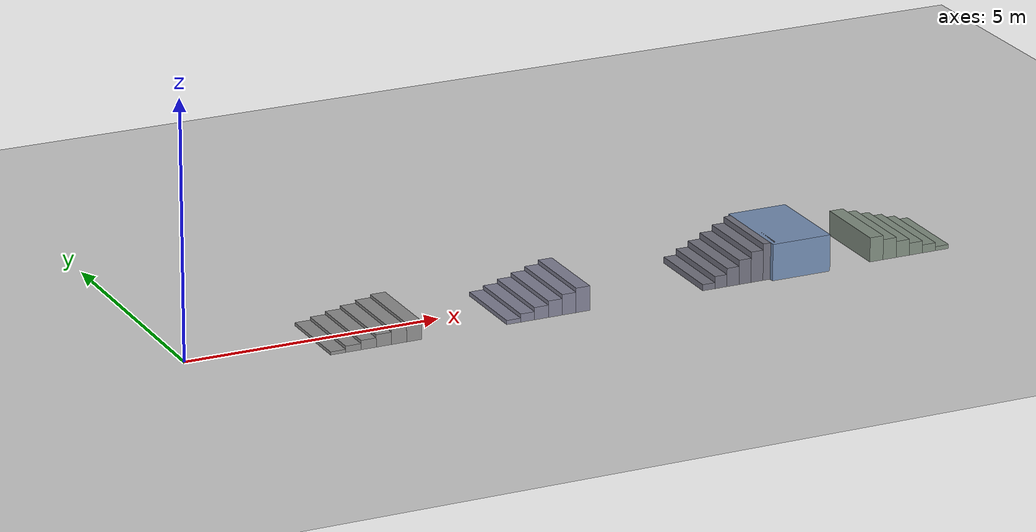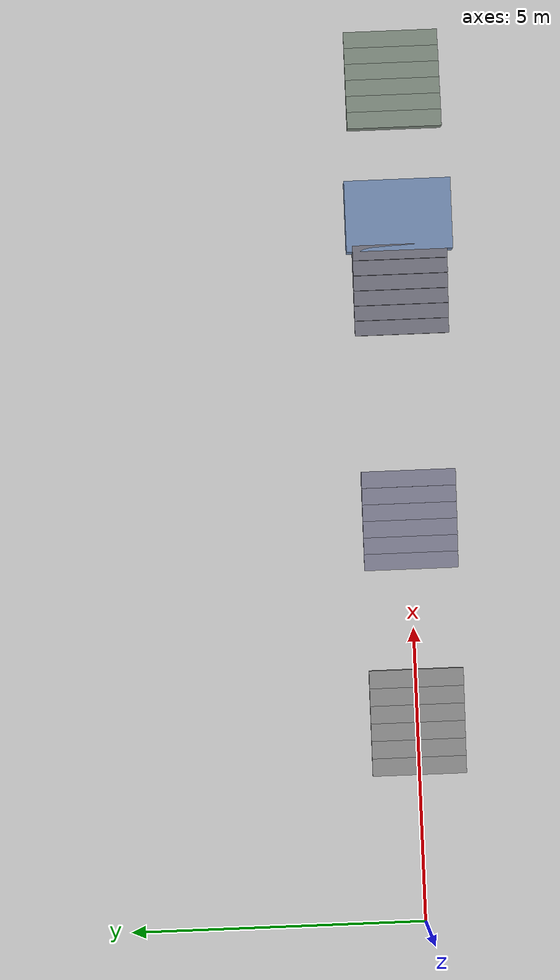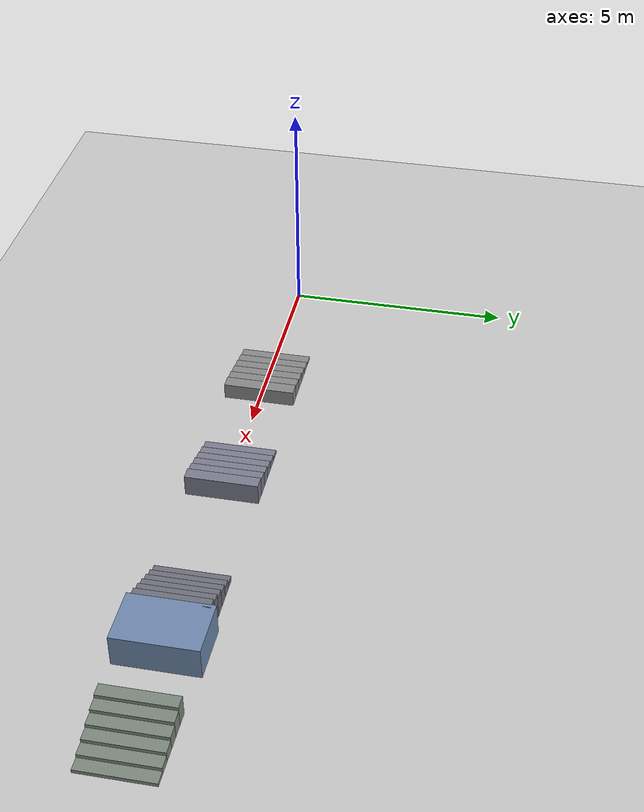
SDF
<?xml version="1.0" ?>
<sdf version="1.8">
  <world name="go2_rl">

    <physics name="1ms" type="ode">
      <max_step_size>0.005</max_step_size>
      <real_time_factor>1.0</real_time_factor>
    </physics>

    <plugin filename="gz-sim-physics-system" name="gz::sim::systems::Physics"/>
    <plugin filename="gz-sim-user-commands-system" name="gz::sim::systems::UserCommands"/>
    <plugin filename="gz-sim-scene-broadcaster-system" name="gz::sim::systems::SceneBroadcaster"/>
    <plugin filename="gz-sim-contact-system" name="gz::sim::systems::Contact"/>
    <plugin filename="gz-sim-imu-system" name="gz::sim::systems::Imu"/>
    <plugin filename="gz-sim-sensors-system" name="gz::sim::systems::Sensors">
      <render_engine>ogre2</render_engine>
    </plugin>

    <light type="directional" name="sun">
      <cast_shadows>true</cast_shadows>
      <pose>0 0 10 0 0 0</pose>
      <diffuse>0.8 0.8 0.8 1</diffuse>
      <specular>0.2 0.2 0.2 1</specular>
      <direction>-0.5 0.1 -0.9</direction>
    </light>

    <!-- Flat spawn / fall-recovery pad at origin -->
    <model name="ground_plane">
      <static>true</static>
      <link name="link">
        <collision name="collision">
          <geometry><plane><normal>0 0 1</normal><size>200 200</size></plane></geometry>
          <surface><friction><ode><mu>1.0</mu><mu2>1.0</mu2></ode></friction></surface>
        </collision>
        <visual name="visual">
          <geometry><plane><normal>0 0 1</normal><size>200 200</size></plane></geometry>
          <material><ambient>0.8 0.8 0.8 1</ambient><diffuse>0.8 0.8 0.8 1</diffuse></material>
        </visual>
      </link>
    </model>

    <!-- Easy stairs: 6 cm rise x 30 cm run (x ~ 2.5–4.3 m) -->
    <model name="stairs_easy">
      <static>true</static>
      <pose>0 0 0 0 0 0</pose>
      <link name="step_1">
        <pose>2.6500 0.0000 0.0300 0 0 0</pose>
        <collision name="collision">
          <geometry><box><size>0.3000 1.6000 0.0600</size></box></geometry>
          <surface><friction><ode><mu>1.0</mu><mu2>1.0</mu2></ode></friction></surface>
        </collision>
        <visual name="visual">
          <geometry><box><size>0.3000 1.6000 0.0600</size></box></geometry>
          <material><ambient>0.55 0.55 0.55 1</ambient><diffuse>0.55 0.55 0.55 1</diffuse></material>
        </visual>
      </link>
      <link name="step_2">
        <pose>2.9500 0.0000 0.0600 0 0 0</pose>
        <collision name="collision">
          <geometry><box><size>0.3000 1.6000 0.1200</size></box></geometry>
          <surface><friction><ode><mu>1.0</mu><mu2>1.0</mu2></ode></friction></surface>
        </collision>
        <visual name="visual">
          <geometry><box><size>0.3000 1.6000 0.1200</size></box></geometry>
          <material><ambient>0.55 0.55 0.55 1</ambient><diffuse>0.55 0.55 0.55 1</diffuse></material>
        </visual>
      </link>
      <link name="step_3">
        <pose>3.2500 0.0000 0.0900 0 0 0</pose>
        <collision name="collision">
          <geometry><box><size>0.3000 1.6000 0.1800</size></box></geometry>
          <surface><friction><ode><mu>1.0</mu><mu2>1.0</mu2></ode></friction></surface>
        </collision>
        <visual name="visual">
          <geometry><box><size>0.3000 1.6000 0.1800</size></box></geometry>
          <material><ambient>0.55 0.55 0.55 1</ambient><diffuse>0.55 0.55 0.55 1</diffuse></material>
        </visual>
      </link>
      <link name="step_4">
        <pose>3.5500 0.0000 0.1200 0 0 0</pose>
        <collision name="collision">
          <geometry><box><size>0.3000 1.6000 0.2400</size></box></geometry>
          <surface><friction><ode><mu>1.0</mu><mu2>1.0</mu2></ode></friction></surface>
        </collision>
        <visual name="visual">
          <geometry><box><size>0.3000 1.6000 0.2400</size></box></geometry>
          <material><ambient>0.55 0.55 0.55 1</ambient><diffuse>0.55 0.55 0.55 1</diffuse></material>
        </visual>
      </link>
      <link name="step_5">
        <pose>3.8500 0.0000 0.1500 0 0 0</pose>
        <collision name="collision">
          <geometry><box><size>0.3000 1.6000 0.3000</size></box></geometry>
          <surface><friction><ode><mu>1.0</mu><mu2>1.0</mu2></ode></friction></surface>
        </collision>
        <visual name="visual">
          <geometry><box><size>0.3000 1.6000 0.3000</size></box></geometry>
          <material><ambient>0.55 0.55 0.55 1</ambient><diffuse>0.55 0.55 0.55 1</diffuse></material>
        </visual>
      </link>
      <link name="step_6">
        <pose>4.1500 0.0000 0.1800 0 0 0</pose>
        <collision name="collision">
          <geometry><box><size>0.3000 1.6000 0.3600</size></box></geometry>
          <surface><friction><ode><mu>1.0</mu><mu2>1.0</mu2></ode></friction></surface>
        </collision>
        <visual name="visual">
          <geometry><box><size>0.3000 1.6000 0.3600</size></box></geometry>
          <material><ambient>0.55 0.55 0.55 1</ambient><diffuse>0.55 0.55 0.55 1</diffuse></material>
        </visual>
      </link>
    </model>

    <!-- Mid stairs: 8 cm rise x 28 cm run (x ~ 6–7.7 m) -->
    <model name="stairs_mid">
      <static>true</static>
      <pose>0 0 0 0 0 0</pose>
      <link name="step_1">
        <pose>6.1400 0.0000 0.0400 0 0 0</pose>
        <collision name="collision">
          <geometry><box><size>0.2800 1.6000 0.0800</size></box></geometry>
          <surface><friction><ode><mu>1.0</mu><mu2>1.0</mu2></ode></friction></surface>
        </collision>
        <visual name="visual">
          <geometry><box><size>0.2800 1.6000 0.0800</size></box></geometry>
          <material><ambient>0.5 0.5 0.58 1</ambient><diffuse>0.5 0.5 0.58 1</diffuse></material>
        </visual>
      </link>
      <link name="step_2">
        <pose>6.4200 0.0000 0.0800 0 0 0</pose>
        <collision name="collision">
          <geometry><box><size>0.2800 1.6000 0.1600</size></box></geometry>
          <surface><friction><ode><mu>1.0</mu><mu2>1.0</mu2></ode></friction></surface>
        </collision>
        <visual name="visual">
          <geometry><box><size>0.2800 1.6000 0.1600</size></box></geometry>
          <material><ambient>0.5 0.5 0.58 1</ambient><diffuse>0.5 0.5 0.58 1</diffuse></material>
        </visual>
      </link>
      <link name="step_3">
        <pose>6.7000 0.0000 0.1200 0 0 0</pose>
        <collision name="collision">
          <geometry><box><size>0.2800 1.6000 0.2400</size></box></geometry>
          <surface><friction><ode><mu>1.0</mu><mu2>1.0</mu2></ode></friction></surface>
        </collision>
        <visual name="visual">
          <geometry><box><size>0.2800 1.6000 0.2400</size></box></geometry>
          <material><ambient>0.5 0.5 0.58 1</ambient><diffuse>0.5 0.5 0.58 1</diffuse></material>
        </visual>
      </link>
      <link name="step_4">
        <pose>6.9800 0.0000 0.1600 0 0 0</pose>
        <collision name="collision">
          <geometry><box><size>0.2800 1.6000 0.3200</size></box></geometry>
          <surface><friction><ode><mu>1.0</mu><mu2>1.0</mu2></ode></friction></surface>
        </collision>
        <visual name="visual">
          <geometry><box><size>0.2800 1.6000 0.3200</size></box></geometry>
          <material><ambient>0.5 0.5 0.58 1</ambient><diffuse>0.5 0.5 0.58 1</diffuse></material>
        </visual>
      </link>
      <link name="step_5">
        <pose>7.2600 0.0000 0.2000 0 0 0</pose>
        <collision name="collision">
          <geometry><box><size>0.2800 1.6000 0.4000</size></box></geometry>
          <surface><friction><ode><mu>1.0</mu><mu2>1.0</mu2></ode></friction></surface>
        </collision>
        <visual name="visual">
          <geometry><box><size>0.2800 1.6000 0.4000</size></box></geometry>
          <material><ambient>0.5 0.5 0.58 1</ambient><diffuse>0.5 0.5 0.58 1</diffuse></material>
        </visual>
      </link>
      <link name="step_6">
        <pose>7.5400 0.0000 0.2400 0 0 0</pose>
        <collision name="collision">
          <geometry><box><size>0.2800 1.6000 0.4800</size></box></geometry>
          <surface><friction><ode><mu>1.0</mu><mu2>1.0</mu2></ode></friction></surface>
        </collision>
        <visual name="visual">
          <geometry><box><size>0.2800 1.6000 0.4800</size></box></geometry>
          <material><ambient>0.5 0.5 0.58 1</ambient><diffuse>0.5 0.5 0.58 1</diffuse></material>
        </visual>
      </link>
    </model>

    <!-- Hard stairs: 12 cm rise x 25 cm run (x ~ 10–11.5 m) -->
    <model name="stairs_hard">
      <static>true</static>
      <pose>0 0 0 0 0 0</pose>
      <link name="step_1">
        <pose>10.1250 0.0000 0.0600 0 0 0</pose>
        <collision name="collision">
          <geometry><box><size>0.2500 1.6000 0.1200</size></box></geometry>
          <surface><friction><ode><mu>1.0</mu><mu2>1.0</mu2></ode></friction></surface>
        </collision>
        <visual name="visual">
          <geometry><box><size>0.2500 1.6000 0.1200</size></box></geometry>
          <material><ambient>0.45 0.45 0.5 1</ambient><diffuse>0.45 0.45 0.5 1</diffuse></material>
        </visual>
      </link>
      <link name="step_2">
        <pose>10.3750 0.0000 0.1200 0 0 0</pose>
        <collision name="collision">
          <geometry><box><size>0.2500 1.6000 0.2400</size></box></geometry>
          <surface><friction><ode><mu>1.0</mu><mu2>1.0</mu2></ode></friction></surface>
        </collision>
        <visual name="visual">
          <geometry><box><size>0.2500 1.6000 0.2400</size></box></geometry>
          <material><ambient>0.45 0.45 0.5 1</ambient><diffuse>0.45 0.45 0.5 1</diffuse></material>
        </visual>
      </link>
      <link name="step_3">
        <pose>10.6250 0.0000 0.1800 0 0 0</pose>
        <collision name="collision">
          <geometry><box><size>0.2500 1.6000 0.3600</size></box></geometry>
          <surface><friction><ode><mu>1.0</mu><mu2>1.0</mu2></ode></friction></surface>
        </collision>
        <visual name="visual">
          <geometry><box><size>0.2500 1.6000 0.3600</size></box></geometry>
          <material><ambient>0.45 0.45 0.5 1</ambient><diffuse>0.45 0.45 0.5 1</diffuse></material>
        </visual>
      </link>
      <link name="step_4">
        <pose>10.8750 0.0000 0.2400 0 0 0</pose>
        <collision name="collision">
          <geometry><box><size>0.2500 1.6000 0.4800</size></box></geometry>
          <surface><friction><ode><mu>1.0</mu><mu2>1.0</mu2></ode></friction></surface>
        </collision>
        <visual name="visual">
          <geometry><box><size>0.2500 1.6000 0.4800</size></box></geometry>
          <material><ambient>0.45 0.45 0.5 1</ambient><diffuse>0.45 0.45 0.5 1</diffuse></material>
        </visual>
      </link>
      <link name="step_5">
        <pose>11.1250 0.0000 0.3000 0 0 0</pose>
        <collision name="collision">
          <geometry><box><size>0.2500 1.6000 0.6000</size></box></geometry>
          <surface><friction><ode><mu>1.0</mu><mu2>1.0</mu2></ode></friction></surface>
        </collision>
        <visual name="visual">
          <geometry><box><size>0.2500 1.6000 0.6000</size></box></geometry>
          <material><ambient>0.45 0.45 0.5 1</ambient><diffuse>0.45 0.45 0.5 1</diffuse></material>
        </visual>
      </link>
      <link name="step_6">
        <pose>11.3750 0.0000 0.3600 0 0 0</pose>
        <collision name="collision">
          <geometry><box><size>0.2500 1.6000 0.7200</size></box></geometry>
          <surface><friction><ode><mu>1.0</mu><mu2>1.0</mu2></ode></friction></surface>
        </collision>
        <visual name="visual">
          <geometry><box><size>0.2500 1.6000 0.7200</size></box></geometry>
          <material><ambient>0.45 0.45 0.5 1</ambient><diffuse>0.45 0.45 0.5 1</diffuse></material>
        </visual>
      </link>
    </model>

    <!-- Top landing after hard stairs -->
    <model name="landing_hard">
      <static>true</static>
      <pose>0 0 0 0 0 0</pose>
      <link name="deck">
        <pose>12.0000 0.0000 0.3600 0 0 0</pose>
        <collision name="collision">
          <geometry><box><size>1.2000 1.8000 0.7200</size></box></geometry>
          <surface><friction><ode><mu>1.0</mu><mu2>1.0</mu2></ode></friction></surface>
        </collision>
        <visual name="visual">
          <geometry><box><size>1.2000 1.8000 0.7200</size></box></geometry>
          <material><ambient>0.45 0.55 0.7 1</ambient><diffuse>0.45 0.55 0.7 1</diffuse></material>
        </visual>
      </link>
    </model>

    <!-- Descent (facing -X): 8 cm steps starting at x~14 -->
    <model name="stairs_down">
      <static>true</static>
      <pose>0 0 0 0 0 0</pose>
      <link name="down_1">
        <pose>13.6400 0.0000 0.2400 0 0 0</pose>
        <collision name="collision">
          <geometry><box><size>0.2800 1.6000 0.4800</size></box></geometry>
          <surface><friction><ode><mu>1.0</mu><mu2>1.0</mu2></ode></friction></surface>
        </collision>
        <visual name="visual">
          <geometry><box><size>0.2800 1.6000 0.4800</size></box></geometry>
          <material><ambient>0.5 0.55 0.5 1</ambient><diffuse>0.5 0.55 0.5 1</diffuse></material>
        </visual>
      </link>
      <link name="down_2">
        <pose>13.9200 0.0000 0.2000 0 0 0</pose>
        <collision name="collision">
          <geometry><box><size>0.2800 1.6000 0.4000</size></box></geometry>
          <surface><friction><ode><mu>1.0</mu><mu2>1.0</mu2></ode></friction></surface>
        </collision>
        <visual name="visual">
          <geometry><box><size>0.2800 1.6000 0.4000</size></box></geometry>
          <material><ambient>0.5 0.55 0.5 1</ambient><diffuse>0.5 0.55 0.5 1</diffuse></material>
        </visual>
      </link>
      <link name="down_3">
        <pose>14.2000 0.0000 0.1600 0 0 0</pose>
        <collision name="collision">
          <geometry><box><size>0.2800 1.6000 0.3200</size></box></geometry>
          <surface><friction><ode><mu>1.0</mu><mu2>1.0</mu2></ode></friction></surface>
        </collision>
        <visual name="visual">
          <geometry><box><size>0.2800 1.6000 0.3200</size></box></geometry>
          <material><ambient>0.5 0.55 0.5 1</ambient><diffuse>0.5 0.55 0.5 1</diffuse></material>
        </visual>
      </link>
      <link name="down_4">
        <pose>14.4800 0.0000 0.1200 0 0 0</pose>
        <collision name="collision">
          <geometry><box><size>0.2800 1.6000 0.2400</size></box></geometry>
          <surface><friction><ode><mu>1.0</mu><mu2>1.0</mu2></ode></friction></surface>
        </collision>
        <visual name="visual">
          <geometry><box><size>0.2800 1.6000 0.2400</size></box></geometry>
          <material><ambient>0.5 0.55 0.5 1</ambient><diffuse>0.5 0.55 0.5 1</diffuse></material>
        </visual>
      </link>
      <link name="down_5">
        <pose>14.7600 0.0000 0.0800 0 0 0</pose>
        <collision name="collision">
          <geometry><box><size>0.2800 1.6000 0.1600</size></box></geometry>
          <surface><friction><ode><mu>1.0</mu><mu2>1.0</mu2></ode></friction></surface>
        </collision>
        <visual name="visual">
          <geometry><box><size>0.2800 1.6000 0.1600</size></box></geometry>
          <material><ambient>0.5 0.55 0.5 1</ambient><diffuse>0.5 0.55 0.5 1</diffuse></material>
        </visual>
      </link>
      <link name="down_6">
        <pose>15.0400 0.0000 0.0400 0 0 0</pose>
        <collision name="collision">
          <geometry><box><size>0.2800 1.6000 0.0800</size></box></geometry>
          <surface><friction><ode><mu>1.0</mu><mu2>1.0</mu2></ode></friction></surface>
        </collision>
        <visual name="visual">
          <geometry><box><size>0.2800 1.6000 0.0800</size></box></geometry>
          <material><ambient>0.5 0.55 0.5 1</ambient><diffuse>0.5 0.55 0.5 1</diffuse></material>
        </visual>
      </link>
    </model>

  </world>
</sdf>
